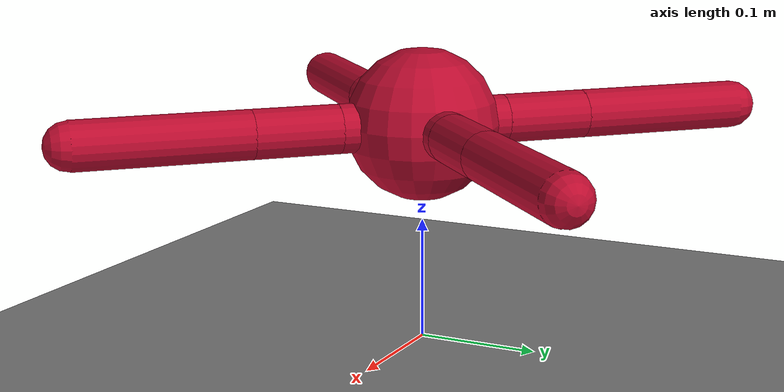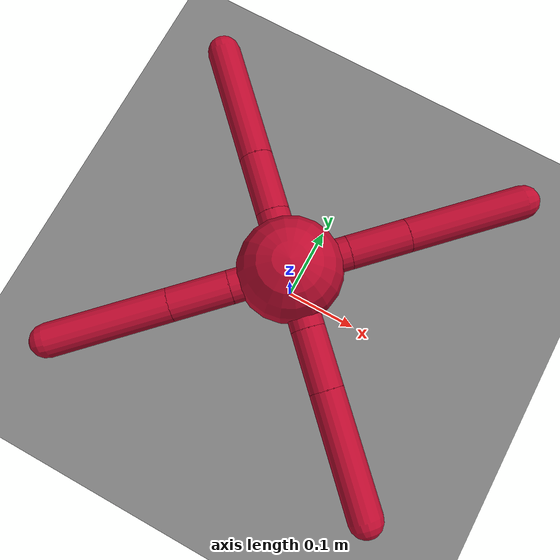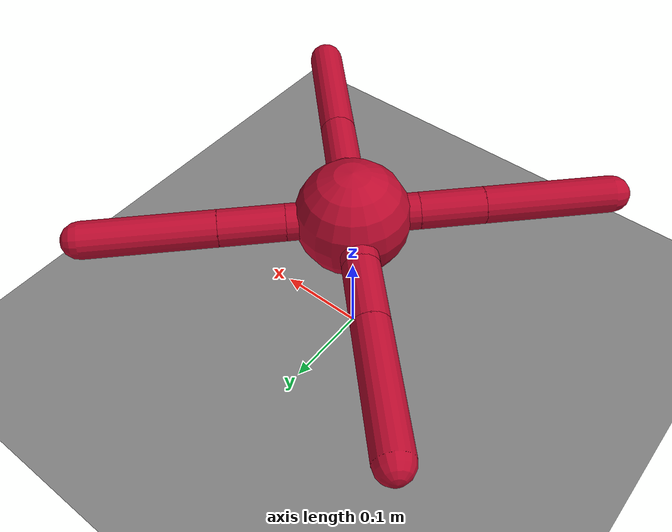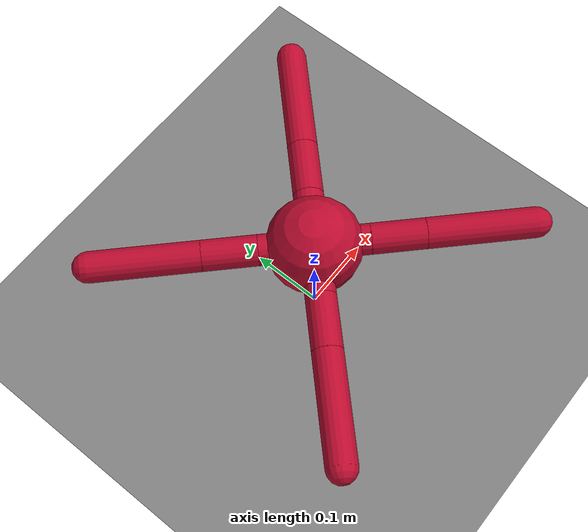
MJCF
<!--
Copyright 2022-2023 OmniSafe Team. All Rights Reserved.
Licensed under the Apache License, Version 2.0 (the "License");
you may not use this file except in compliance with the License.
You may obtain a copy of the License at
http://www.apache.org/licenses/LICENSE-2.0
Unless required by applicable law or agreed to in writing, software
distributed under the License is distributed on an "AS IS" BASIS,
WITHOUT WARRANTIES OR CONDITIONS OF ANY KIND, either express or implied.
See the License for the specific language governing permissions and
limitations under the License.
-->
<mujoco model="ant">
  <size njmax="3000" nconmax="1000"/>
  <compiler angle="radian" coordinate="local" inertiafromgeom="true"/>
  <option integrator="RK4" timestep="0.01"/>
  <custom>
    <numeric data="0.0 0.0 0.55 1.0 0.0 0.0 0.0 0.0 1.0 0.0 -1.0 0.0 -1.0 0.0 1.0" name="init_qpos"/>
  </custom>
  <default>
    <joint armature="1" damping="1" limited="true"/>
    <geom condim="6" density="5.0"/>
    <site size="0.032" type="sphere"/>
  <default class="agent">
    <geom rgba="0.7412 0.0431 0.1843 1"/>
  </default>
  <default class="agent1">
    <geom rgba="0.0039 0.1529 0.3961 1"/>
  </default>
  </default>
  <worldbody>
    <geom name="floor" size="5 5 0.1" type="plane" condim="6" conaffinity="3"/>
    <body name="agent" pos="0 0 0.18" childclass="agent">
      <site name="agent" rgba="1 0 0 .1" pos="0 0 -0.02"/>
      <camera name="vision" pos="0 0.05 0.05" euler="1.57 0 0"/>
      <geom name="torso_geom" pos="0 0 0" size="0.0625" type="sphere"/>
      <joint armature="0" damping="0" limited="false" margin="0.01" name="root" pos="0 0 0" type="free"/>
      <body name="front_left_leg" pos="0 0 0">
        <geom fromto="0.0 0.0 0.0 0.05 0.05 0.0" name="aux_1_geom" size="0.02" type="capsule"/>
        <body name="aux_1" pos="0.05 0.05 0">
          <joint axis="0 0 1" name="hip_1" pos="0.0 0.0 0.0" range="-0.70 0.70" type="hinge"/>
          <geom fromto="0.0 0.0 0.0 0.05 0.05 0.0" name="left_leg_geom" size="0.02" type="capsule"/>
          <body pos="0.05 0.05 0" name="front_left_foot">
            <joint axis="-1 1 0" name="ankle_1" pos="0.0 0.0 0.0" range="0.52 1.74" type="hinge"/>
            <geom fromto="0.0 0.0 0.0 0.1 0.1 0.0" name="left_ankle_geom" size="0.02" type="capsule" density="50000.0"/>
          </body>
        </body>
      </body>
      <body name="front_right_leg" pos="0 0 0">
        <geom fromto="0.0 0.0 0.0 -0.05 0.05 0.0" name="aux_2_geom" size="0.02" type="capsule"/>
        <body name="aux_2" pos="-0.05 0.05 0">
          <joint axis="0 0 1" name="hip_2" pos="0.0 0.0 0.0" range="-0.70 0.70" type="hinge"/>
          <geom fromto="0.0 0.0 0.0 -0.05 0.05 0.0" name="right_leg_geom" size="0.02" type="capsule"/>
          <body pos="-0.05 0.05 0" name="front_right_foot">
            <joint axis="1 1 0" name="ankle_2" pos="0.0 0.0 0.0" range="-1.74 -0.52" type="hinge"/>
            <geom fromto="0.0 0.0 0.0 -0.1 0.1 0.0" name="right_ankle_geom" size="0.02" type="capsule" density="50000.0"/>
          </body>
        </body>
      </body>
      <body name="left_back_leg" pos="0 0 0">
        <geom fromto="0.0 0.0 0.0 -0.05 -0.05 0.0" name="aux_3_geom" size="0.02" type="capsule"/>
        <body name="aux_3" pos="-0.05 -0.05 0">
          <joint axis="0 0 1" name="hip_3" pos="0.0 0.0 0.0" range="-0.70 0.70" type="hinge"/>
          <geom fromto="0.0 0.0 0.0 -0.05 -0.05 0.0" name="back_leg_geom" size="0.02" type="capsule"/>
          <body pos="-0.05 -0.05 0" name="left_back_foot">
            <joint axis="-1 1 0" name="ankle_3" pos="0.0 0.0 0.0" range="-1.74 -0.52" type="hinge"/>
            <geom fromto="0.0 0.0 0.0 -0.1 -0.1 0.0" name="third_ankle_geom" size="0.02" type="capsule" density="50000.0"/>
          </body>
        </body>
      </body>
      <body name="right_back_leg" pos="0 0 0">
        <geom fromto="0.0 0.0 0.0 0.05 -0.05 0.0" name="aux_4_geom" size="0.02" type="capsule"/>
        <body name="aux_4" pos="0.05 -0.05 0">
          <joint axis="0 0 1" name="hip_4" pos="0.0 0.0 0.0" range="-0.70 0.70" type="hinge"/>
          <geom fromto="0.0 0.0 0.0 0.05 -0.05 0.0" name="rightback_leg_geom" size="0.02" type="capsule"/>
          <body pos="0.05 -0.05 0" name="right_back_foot">
            <joint axis="1 1 0" name="ankle_4" pos="0.0 0.0 0.0" range="0.52 1.74" type="hinge"/>
            <geom fromto="0.0 0.0 0.0 0.1 -0.1 0.0" name="fourth_ankle_geom" size="0.02" type="capsule" density="50000.0"/>
          </body>
        </body>
      </body>
    </body>
    <body name="agent1" pos="0 0 0.18" childclass="agent1">
      <site name="agent1" rgba="1 0 0 .1" pos="0 0 -0.02"/>
      <camera name="vision1" pos="0 0.05 0.05" euler="1.57 0 0"/>
      <geom name="torso_geom1" pos="0 0 0" size="0.0625" type="sphere"/>
      <joint armature="0" damping="0" limited="false" margin="0.01" name="root1" pos="0 0 0" type="free"/>
      <body name="front_left_leg1" pos="0 0 0">
        <geom fromto="0.0 0.0 0.0 0.05 0.05 0.0" name="aux_1_geom1" size="0.02" type="capsule"/>
        <body name="aux_11" pos="0.05 0.05 0">
          <joint axis="0 0 1" name="hip_11" pos="0.0 0.0 0.0" range="-0.70 0.70" type="hinge"/>
          <geom fromto="0.0 0.0 0.0 0.05 0.05 0.0" name="left_leg_geom1" size="0.02" type="capsule"/>
          <body pos="0.05 0.05 0" name="front_left_foot1">
            <joint axis="-1 1 0" name="ankle_11" pos="0.0 0.0 0.0" range="0.52 1.74" type="hinge"/>
            <geom fromto="0.0 0.0 0.0 0.1 0.1 0.0" name="left_ankle_geom1" size="0.02" type="capsule" density="50000.0"/>
          </body>
        </body>
      </body>
      <body name="front_right_leg1" pos="0 0 0">
        <geom fromto="0.0 0.0 0.0 -0.05 0.05 0.0" name="aux_2_geom1" size="0.02" type="capsule"/>
        <body name="aux_21" pos="-0.05 0.05 0">
          <joint axis="0 0 1" name="hip_21" pos="0.0 0.0 0.0" range="-0.70 0.70" type="hinge"/>
          <geom fromto="0.0 0.0 0.0 -0.05 0.05 0.0" name="right_leg_geom1" size="0.02" type="capsule"/>
          <body pos="-0.05 0.05 0" name="front_right_foot1">
            <joint axis="1 1 0" name="ankle_21" pos="0.0 0.0 0.0" range="-1.74 -0.52" type="hinge"/>
            <geom fromto="0.0 0.0 0.0 -0.1 0.1 0.0" name="right_ankle_geom1" size="0.02" type="capsule" density="50000.0"/>
          </body>
        </body>
      </body>
      <body name="left_back_leg1" pos="0 0 0">
        <geom fromto="0.0 0.0 0.0 -0.05 -0.05 0.0" name="aux_3_geom1" size="0.02" type="capsule"/>
        <body name="aux_31" pos="-0.05 -0.05 0">
          <joint axis="0 0 1" name="hip_31" pos="0.0 0.0 0.0" range="-0.70 0.70" type="hinge"/>
          <geom fromto="0.0 0.0 0.0 -0.05 -0.05 0.0" name="back_leg_geom1" size="0.02" type="capsule"/>
          <body pos="-0.05 -0.05 0" name="left_back_foot1">
            <joint axis="-1 1 0" name="ankle_31" pos="0.0 0.0 0.0" range="-1.74 -0.52" type="hinge"/>
            <geom fromto="0.0 0.0 0.0 -0.1 -0.1 0.0" name="third_ankle_geom1" size="0.02" type="capsule" density="50000.0"/>
          </body>
        </body>
      </body>
      <body name="right_back_leg1" pos="0 0 0">
        <geom fromto="0.0 0.0 0.0 0.05 -0.05 0.0" name="aux_4_geom1" size="0.02" type="capsule"/>
        <body name="aux_41" pos="0.05 -0.05 0">
          <joint axis="0 0 1" name="hip_41" pos="0.0 0.0 0.0" range="-0.70 0.70" type="hinge"/>
          <geom fromto="0.0 0.0 0.0 0.05 -0.05 0.0" name="rightback_leg_geom1" size="0.02" type="capsule"/>
          <body pos="0.05 -0.05 0" name="right_back_foot1">
            <joint axis="1 1 0" name="ankle_41" pos="0.0 0.0 0.0" range="0.52 1.74" type="hinge"/>
            <geom fromto="0.0 0.0 0.0 0.1 -0.1 0.0" name="fourth_ankle_geom1" size="0.02" type="capsule" density="50000.0"/>
          </body>
        </body>
      </body>
    </body>
  </worldbody>
  <sensor>
    <!-- Used for observation -->
    <accelerometer site="agent" name="accelerometer"/>
    <velocimeter site="agent" name="velocimeter"/>
    <gyro site="agent" name="gyro"/>
    <magnetometer site="agent" name="magnetometer"/>

    <!-- Used for intrinsic constraints -->
    <subtreecom body="agent" name="subtreecom"/>
    <subtreelinvel body="agent" name="subtreelinvel"/>
    <subtreeangmom body="agent" name="subtreeangmom"/>

    <framepos objtype="site" objname="agent" name="agent_pos"/>

    <jointpos joint="hip_1" name="hip_1"/>
    <jointpos joint="ankle_1" name="ankle_1"/>
    <jointpos joint="hip_2" name="hip_2"/>
    <jointpos joint="ankle_2" name="ankle_2"/>
    <jointpos joint="hip_3" name="hip_3"/>
    <jointpos joint="ankle_3" name="ankle_3"/>
    <jointpos joint="hip_4" name="hip_4"/>
    <jointpos joint="ankle_4" name="ankle_4"/>

    <frameangvel objtype="site" objname="agent" name="agent_qvel"/>

    <jointvel joint="hip_1" name="hip_1_vel"/>
    <jointvel joint="ankle_1" name="ankle_1_vel"/>
    <jointvel joint="hip_2" name="hip_2_vel"/>
    <jointvel joint="ankle_2" name="ankle_2_vel"/>
    <jointvel joint="hip_3" name="hip_3_vel"/>
    <jointvel joint="ankle_3" name="ankle_3_vel"/>
    <jointvel joint="hip_4" name="hip_4_vel"/>
    <jointvel joint="ankle_4" name="ankle_4_vel"/>

    <!-- Used for observation -->
    <accelerometer site="agent1" name="accelerometer1"/>
    <velocimeter site="agent1" name="velocimeter1"/>
    <gyro site="agent1" name="gyro1"/>
    <magnetometer site="agent1" name="magnetometer1"/>

    <!-- Used for intrinsic constraints -->
    <subtreecom body="agent1" name="subtreecom1"/>
    <subtreelinvel body="agent1" name="subtreelinvel1"/>
    <subtreeangmom body="agent1" name="subtreeangmom1"/>

    <framepos objtype="site" objname="agent1" name="agent_pos1"/>

    <jointpos joint="hip_11" name="hip_11"/>
    <jointpos joint="ankle_11" name="ankle_11"/>
    <jointpos joint="hip_21" name="hip_21"/>
    <jointpos joint="ankle_21" name="ankle_21"/>
    <jointpos joint="hip_31" name="hip_31"/>
    <jointpos joint="ankle_31" name="ankle_31"/>
    <jointpos joint="hip_41" name="hip_41"/>
    <jointpos joint="ankle_41" name="ankle_41"/>

    <frameangvel objtype="site" objname="agent1" name="agent_qvel1"/>

    <jointvel joint="hip_11" name="hip_1_vel1"/>
    <jointvel joint="ankle_11" name="ankle_1_vel1"/>
    <jointvel joint="hip_21" name="hip_2_vel1"/>
    <jointvel joint="ankle_21" name="ankle_2_vel1"/>
    <jointvel joint="hip_31" name="hip_3_vel1"/>
    <jointvel joint="ankle_31" name="ankle_3_vel1"/>
    <jointvel joint="hip_41" name="hip_4_vel1"/>
    <jointvel joint="ankle_41" name="ankle_4_vel1"/>
  </sensor>
  <actuator>
    <motor ctrllimited="true" ctrlrange="-1.0 1.0" joint="hip_1" gear="150"/>
    <motor ctrllimited="true" ctrlrange="-1.0 1.0" joint="ankle_1" gear="150"/>
    <motor ctrllimited="true" ctrlrange="-1.0 1.0" joint="hip_2" gear="150"/>
    <motor ctrllimited="true" ctrlrange="-1.0 1.0" joint="ankle_2" gear="150"/>
    <motor ctrllimited="true" ctrlrange="-1.0 1.0" joint="hip_3" gear="150"/>
    <motor ctrllimited="true" ctrlrange="-1.0 1.0" joint="ankle_3" gear="150"/>
    <motor ctrllimited="true" ctrlrange="-1.0 1.0" joint="hip_4" gear="150"/>
    <motor ctrllimited="true" ctrlrange="-1.0 1.0" joint="ankle_4" gear="150"/>

    <motor ctrllimited="true" ctrlrange="-1.0 1.0" joint="hip_11" gear="150"/>
    <motor ctrllimited="true" ctrlrange="-1.0 1.0" joint="ankle_11" gear="150"/>
    <motor ctrllimited="true" ctrlrange="-1.0 1.0" joint="hip_21" gear="150"/>
    <motor ctrllimited="true" ctrlrange="-1.0 1.0" joint="ankle_21" gear="150"/>
    <motor ctrllimited="true" ctrlrange="-1.0 1.0" joint="hip_31" gear="150"/>
    <motor ctrllimited="true" ctrlrange="-1.0 1.0" joint="ankle_31" gear="150"/>
    <motor ctrllimited="true" ctrlrange="-1.0 1.0" joint="hip_41" gear="150"/>
    <motor ctrllimited="true" ctrlrange="-1.0 1.0" joint="ankle_41" gear="150"/>
  </actuator>
</mujoco>
